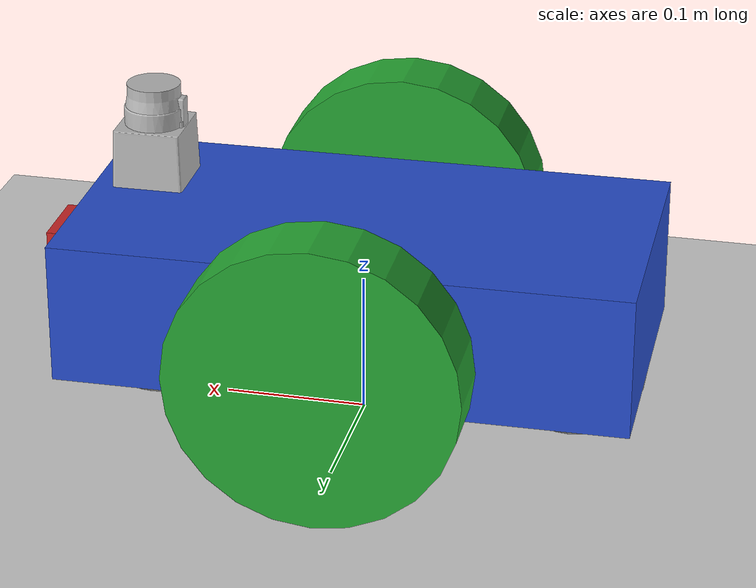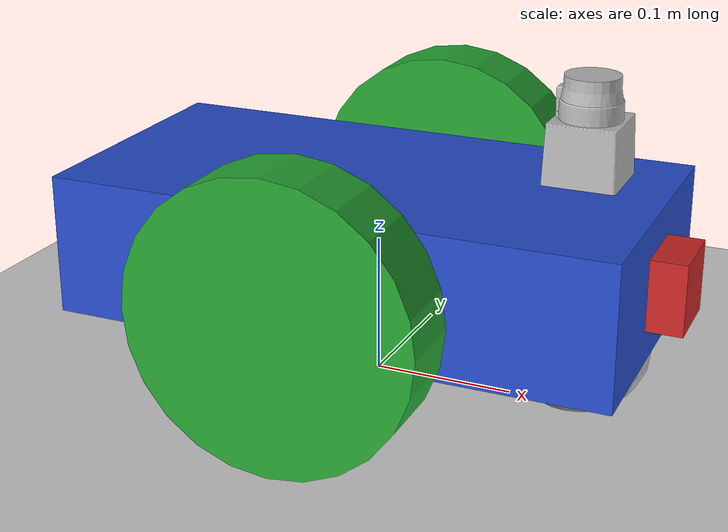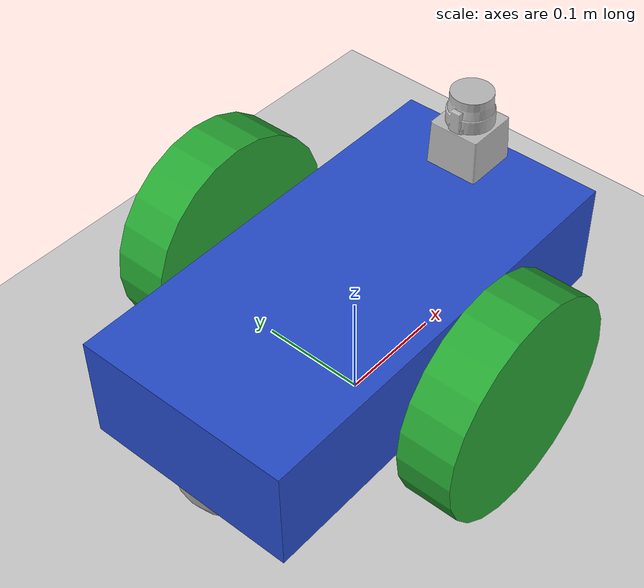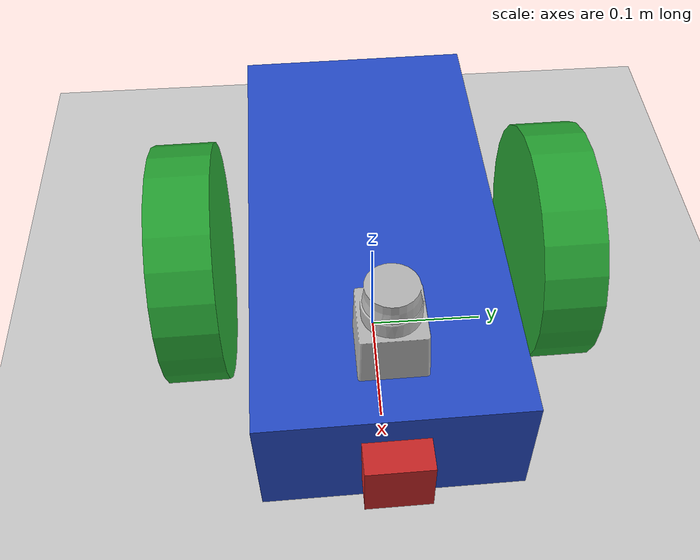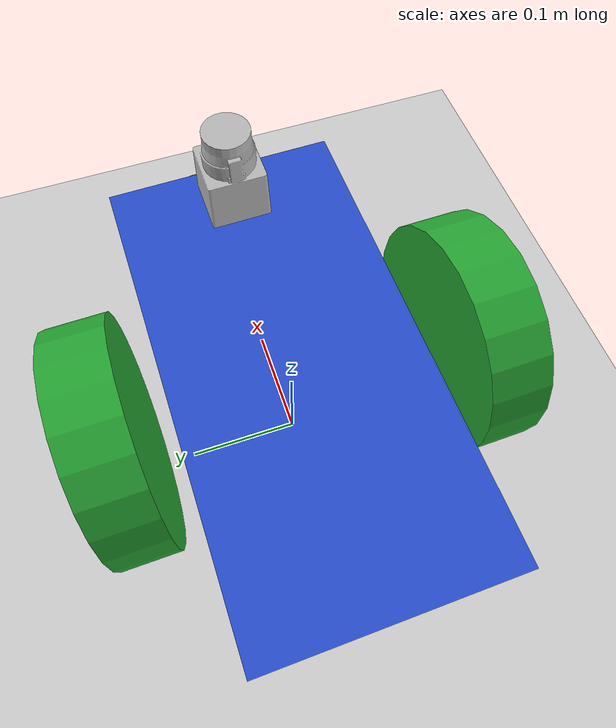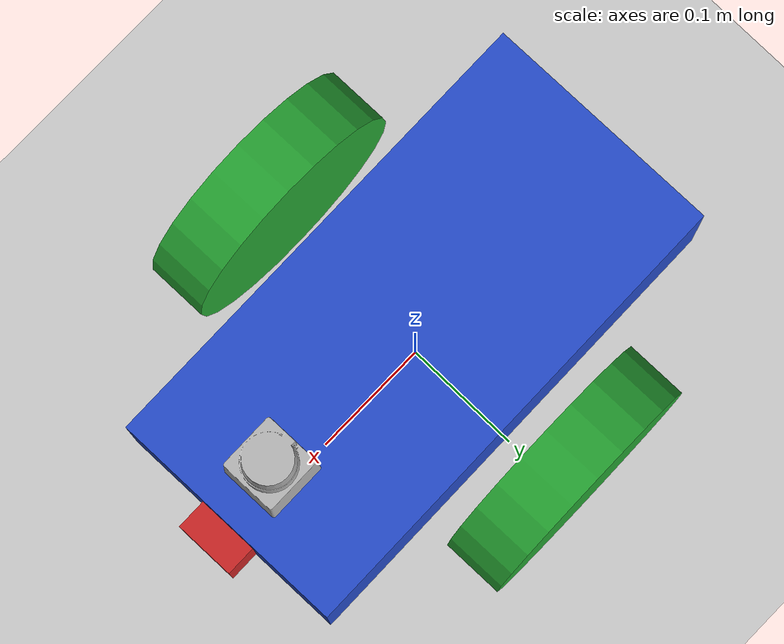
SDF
<sdf version="1.6">
 <world name="default">
  <light name="sun" type="directional">
   <pose>0 0 10 0 -0 0</pose>
   <diffuse>0.8 0.8 0.8 1</diffuse>
   <specular>0.2 0.2 0.2 1</specular>
   <attenuation>
    <range>1000</range>
    <constant>0.9</constant>
    <linear>0.01</linear>
    <quadratic>0.001</quadratic>
   </attenuation>
   <direction>-0.5 0.1 -0.9</direction>
  </light>
  <model name="ground_plane">
   <static>1</static>
   <link name="link">
    <collision name="collision">
     <geometry><plane><normal>0 0 1</normal><size>100 100</size></plane></geometry>
     <surface><friction><ode><mu>100</mu><mu2>50</mu2></ode></friction></surface>
    </collision>
    <visual name="visual">
     <cast_shadows>0</cast_shadows>
     <geometry><plane><normal>0 0 1</normal><size>100 100</size></plane></geometry>
     <material>
      <script><uri>file://media/materials/scripts/gazebo.material</uri><name>Gazebo/Grey</name></script>
     </material>
    </visual>
   </link>
  </model>
  <gravity>0 0 -9.8</gravity>
  <magnetic_field>6e-06 2.3e-05 -4.2e-05</magnetic_field>
  <atmosphere type="adiabatic"/>
  <physics name="default_physics" default="0" type="ode">
   <max_step_size>0.001</max_step_size>
   <real_time_factor>1</real_time_factor>
   <real_time_update_rate>1000</real_time_update_rate>
  </physics>
  <scene><ambient>0.4 0.4 0.4 1</ambient><background>0.7 0.7 0.7 1</background><shadows>1</shadows></scene>
  <spherical_coordinates>
   <surface_model>EARTH_WGS84</surface_model>
   <latitude_deg>0</latitude_deg>
   <longitude_deg>0</longitude_deg>
   <elevation>0</elevation>
   <heading_deg>0</heading_deg>
  </spherical_coordinates>
  <model name="my_robot">
   <link name="robot_footprint">
    <inertial>
     <pose>0.001325 0 0 0 -0 0</pose>
     <mass>15.1</mass>
     <inertia>
      <ixx>0.100002</ixx>
      <ixy>0</ixy>
      <ixz>-1.48675e-07</ixz>
      <iyy>0.103976</iyy>
      <iyz>0</iyz>
      <izz>0.103976</izz>
     </inertia>
    </inertial>
    <collision name="robot_footprint_fixed_joint_lump__collision_collision">
     <geometry><box><size>0.4 0.2 0.1</size></box></geometry>
    </collision>
    <collision name="robot_footprint_fixed_joint_lump__back_caster_collision_collision_1">
     <pose>-0.15 0 -0.05 0 -0 0</pose>
     <geometry><sphere><radius>0.0499</radius></sphere></geometry>
    </collision>
    <collision name="robot_footprint_fixed_joint_lump__front_caster_collision_collision_2">
     <pose>0.15 0 -0.05 0 -0 0</pose>
     <geometry><sphere><radius>0.0499</radius></sphere></geometry>
    </collision>
    <collision name="robot_footprint_fixed_joint_lump__camera_collision_3">
     <pose>0.2 0 0 0 -0 0</pose>
     <geometry><box><size>0.05 0.05 0.05</size></box></geometry>
    </collision>
    <collision name="robot_footprint_fixed_joint_lump__hokuyo_collision_4">
     <pose>0.15 0 0.1 0 -0 0</pose>
     <geometry><box><size>0.1 0.1 0.1</size></box></geometry>
    </collision>
    <visual name="robot_footprint_fixed_joint_lump__chassis_visual_visual">
     <geometry><box><size>0.4 0.2 0.1</size></box></geometry>
     <material>
      <script><name>Gazebo/Blue</name><uri>file://media/materials/scripts/gazebo.material</uri></script>
     </material>
    </visual>
    <visual name="robot_footprint_fixed_joint_lump__back_caster_visual_visual_1">
     <pose>-0.15 0 -0.05 0 -0 0</pose>
     <geometry><sphere><radius>0.05</radius></sphere></geometry>
    </visual>
    <visual name="robot_footprint_fixed_joint_lump__front_caster_visual_visual_2">
     <pose>0.15 0 -0.05 0 -0 0</pose>
     <geometry><sphere><radius>0.05</radius></sphere></geometry>
    </visual>
    <visual name="robot_footprint_fixed_joint_lump__camera_visual_3">
     <pose>0.2 0 0 0 -0 0</pose>
     <geometry><box><size>0.05 0.05 0.05</size></box></geometry>
     <material>
      <script><name>Gazebo/Red</name><uri>file://media/materials/scripts/gazebo.material</uri></script>
     </material>
    </visual>
    <visual name="robot_footprint_fixed_joint_lump__hokuyo_visual_4">
     <pose>0.15 0 0.1 0 -0 0</pose>
     <geometry>
      <mesh><scale>1 1 1</scale><uri>/home/robond/workspace/catkin_ws/src/my_robot/meshes/hokuyo.dae</uri></mesh>
     </geometry>
     <material><script><uri>__default__</uri><name>__default__</name></script></material>
    </visual>
    <sensor name="camera1" type="depth">
     <always_on>1</always_on>
     <update_rate>20</update_rate>
     <visualize>1</visualize>
     <camera name="__default__">
      <horizontal_fov>1.047</horizontal_fov>
      <image><width>640</width><height>480</height><format>R8G8B8</format></image>
      <depth_camera><output>depths</output></depth_camera>
      <clip><near>0.1</near><far>20</far></clip>
     </camera>
     <plugin name="camera_controller" filename="libgazebo_ros_openni_kinect.so">
      <alwaysOn>true</alwaysOn>
      <updateRate>10.0</updateRate>
      <cameraName>camera</cameraName>
      <frameName>camera_link_optical</frameName>
      <imageTopicName>rgb/image_raw</imageTopicName>
      <depthImageTopicName>depth/image_raw</depthImageTopicName>
      <pointCloudTopicName>depth/points</pointCloudTopicName>
      <cameraInfoTopicName>rgb/camera_info</cameraInfoTopicName>
      <depthImageCameraInfoTopicName>depth/camera_info</depthImageCameraInfoTopicName>
      <pointCloudCutoff>0.4</pointCloudCutoff>
      <hackBaseline>0.07</hackBaseline>
      <distortionK1>0.0</distortionK1>
      <distortionK2>0.0</distortionK2>
      <distortionK3>0.0</distortionK3>
      <distortionT1>0.0</distortionT1>
      <distortionT2>0.0</distortionT2>
      <CxPrime>0.0</CxPrime>
      <Cx>0.0</Cx>
      <Cy>0.0</Cy>
      <focalLength>0.0</focalLength>
      <robotNamespace>/</robotNamespace>
     </plugin>
     <pose>0.2 0 0 0 -0 0</pose>
    </sensor>
    <sensor name="head_hokuyo_sensor" type="ray">
     <visualize>0</visualize>
     <update_rate>40</update_rate>
     <ray>
      <scan>
       <horizontal>
        <samples>720</samples>
        <resolution>1</resolution>
        <min_angle>-1.5708</min_angle>
        <max_angle>1.5708</max_angle>
       </horizontal>
       <vertical><samples>1</samples><min_angle>0</min_angle><max_angle>0</max_angle></vertical>
      </scan>
      <range><min>0.1</min><max>30</max><resolution>0.01</resolution></range>
      <noise><type>gaussian</type><mean>0</mean><stddev>0.01</stddev></noise>
     </ray>
     <plugin name="gazebo_ros_head_hokuyo_controller" filename="libgazebo_ros_laser.so">
      <topicName>/scan</topicName>
      <frameName>hokuyo</frameName>
      <robotNamespace>/</robotNamespace>
     </plugin>
     <pose>0.15 0 0.1 0 -0 0</pose>
    </sensor>
   </link>
   <link name="left_wheel">
    <pose>0 0.15 0 0 -0 0</pose>
    <inertial>
     <pose>0 0 0 -0 1.5707 1.5707</pose>
     <mass>5</mass>
     <inertia><ixx>0.1</ixx><ixy>0</ixy><ixz>0</ixz><iyy>0.1</iyy><iyz>0</iyz><izz>0.1</izz></inertia>
    </inertial>
    <collision name="left_wheel_collision">
     <pose>0 0 0 -0 1.5707 1.5707</pose>
     <geometry><cylinder><length>0.05</length><radius>0.1</radius></cylinder></geometry>
    </collision>
    <visual name="left_wheel_visual">
     <pose>0 0 0 -0 1.5707 1.5707</pose>
     <geometry><cylinder><length>0.05</length><radius>0.1</radius></cylinder></geometry>
     <material>
      <script><name>Gazebo/Green</name><uri>file://media/materials/scripts/gazebo.material</uri></script>
     </material>
    </visual>
   </link>
   <joint name="left_wheel_hinge" type="revolute">
    <child>left_wheel</child>
    <parent>robot_footprint</parent>
    <axis>
     <xyz>0 1 0</xyz>
     <limit><lower>-1e+16</lower><upper>1e+16</upper></limit>
     <dynamics>
      <damping>1</damping>
      <friction>1</friction>
      <spring_reference>0</spring_reference>
      <spring_stiffness>0</spring_stiffness>
     </dynamics>
     <use_parent_model_frame>1</use_parent_model_frame>
    </axis>
   </joint>
   <link name="right_wheel">
    <pose>0 -0.15 0 0 -0 0</pose>
    <inertial>
     <pose>0 0 0 -0 1.5707 1.5707</pose>
     <mass>5</mass>
     <inertia><ixx>0.1</ixx><ixy>0</ixy><ixz>0</ixz><iyy>0.1</iyy><iyz>0</iyz><izz>0.1</izz></inertia>
    </inertial>
    <collision name="right_wheel_collision">
     <pose>0 0 0 -0 1.5707 1.5707</pose>
     <geometry><cylinder><length>0.05</length><radius>0.1</radius></cylinder></geometry>
    </collision>
    <visual name="right_wheel_visual">
     <pose>0 0 0 -0 1.5707 1.5707</pose>
     <geometry><cylinder><length>0.05</length><radius>0.1</radius></cylinder></geometry>
     <material>
      <script><name>Gazebo/Green</name><uri>file://media/materials/scripts/gazebo.material</uri></script>
     </material>
    </visual>
   </link>
   <joint name="right_wheel_hinge" type="revolute">
    <child>right_wheel</child>
    <parent>robot_footprint</parent>
    <axis>
     <xyz>0 1 0</xyz>
     <limit><lower>-1e+16</lower><upper>1e+16</upper></limit>
     <dynamics>
      <damping>1</damping>
      <friction>1</friction>
      <spring_reference>0</spring_reference>
      <spring_stiffness>0</spring_stiffness>
     </dynamics>
     <use_parent_model_frame>1</use_parent_model_frame>
    </axis>
   </joint>
   <static>0</static>
   <plugin name="differential_drive_controller" filename="libgazebo_ros_diff_drive.so">
    <legacyMode>false</legacyMode>
    <alwaysOn>true</alwaysOn>
    <updateRate>10</updateRate>
    <leftJoint>left_wheel_hinge</leftJoint>
    <rightJoint>right_wheel_hinge</rightJoint>
    <wheelSeparation>0.4</wheelSeparation>
    <wheelDiameter>0.2</wheelDiameter>
    <torque>10</torque>
    <commandTopic>cmd_vel</commandTopic>
    <odometryTopic>odom</odometryTopic>
    <odometryFrame>odom</odometryFrame>
    <robotBaseFrame>robot_footprint</robotBaseFrame>
    <publishWheelTF>false</publishWheelTF>
    <publishWheelJointState>false</publishWheelJointState>
    <rosDebugLevel>na</rosDebugLevel>
    <wheelAcceleration>0</wheelAcceleration>
    <wheelTorque>5</wheelTorque>
    <odometrySource>world</odometrySource>
    <publishTf>1</publishTf>
    <publishOdomTF>true</publishOdomTF>
    <robotNamespace>/</robotNamespace>
   </plugin>
   <pose>-0.001559 -0.000624 0.1 -1.3e-05 0.000407 0.013301</pose>
  </model>
 </world>
</sdf>
